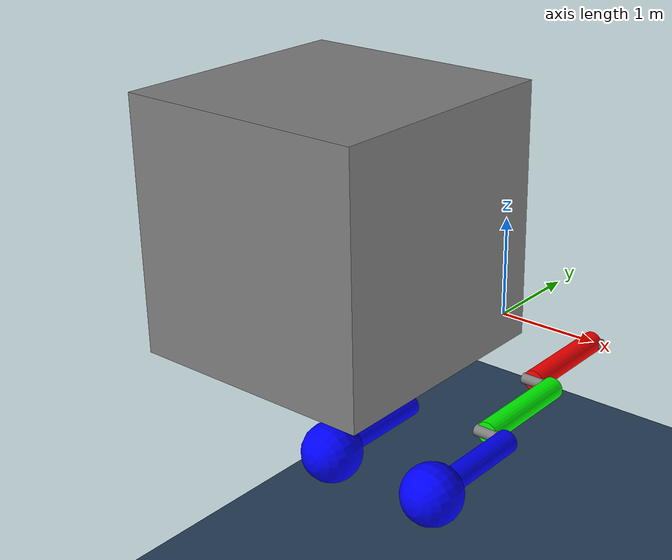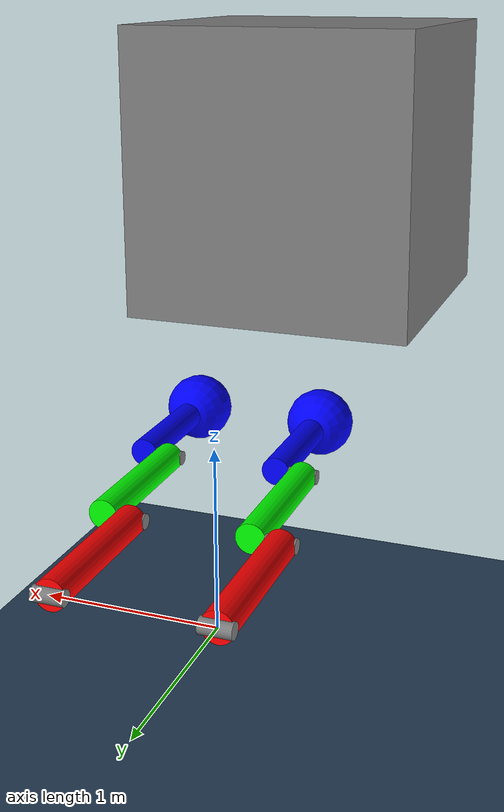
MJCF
<mujoco>
    <option gravity="0 0 -9.81" timestep="0.01" />

    <asset>
        <material name="blue" rgba="0 0 1 1" />
        <material name="green" rgba="0 1 0 1" />
        <material name="red" rgba="1 0 0 1" />
        <material name="white" rgba="1 1 1 1" />
        <texture type="skybox" builtin="gradient" rgb1="0.3 0.5 0.7" rgb2="0 0 0" width="512" height="3072" />
        <texture type="2d" name="groundplane" builtin="checker" rgb1="0.2 0.3 0.4" rgb2="0.1 0.2 0.3" markrgb="0.8 0.8 0.8" width="300" height="300" />
        <material name="groundplane" texture="groundplane" texuniform="true" texrepeat="5 5" reflectance="0.2" />
    </asset>

    <worldbody>
        <geom name="floor" pos="0 0 -2.5" size="0 0 0.05" type="plane" material="groundplane" />
        <light diffuse=".5 .5 .5" pos="0 0 3" dir="0 0 -1" />

        <body name="link_1" pos="0 0 0" euler="90 0 0">
            <site name="site_1" type="cylinder" size=".05 .1" pos=" 0 0 0" euler="0 90 0" />
            <joint name="hinge_1" type="hinge" axis="1 0 0" />
            <geom name="g_link_1" type="cylinder" size=".1 .5" pos="0 0 .5" euler="0 0 0" material="red" mass="1" />
            <site name="site_2" type="cylinder" size=".05 .1" pos=" 0 0 1" euler="0 90 0" />
            <body name="link_2" pos=".2 0 1" euler="0 0 0">
                <joint name="hinge_2" type="hinge" axis="1 0 0" />
                <geom name="g_link_2" type="cylinder" size=".1 .5" pos="0 0 .5" euler="0 0 0" material="green" mass="1" />
                <site name="site_3" type="cylinder" size=".05 .1" pos="0 0 1" euler="0 90 0" />
                <body name="link_3" pos=".2 0 1" euler="0 0 0">
                    <joint name="hinge_3" type="hinge" axis="1 0 0" />
                    <geom name="g_link_3" type="cylinder" size=".1 .5" pos="0 0 .5" euler="0 0 0" material="blue" mass="1" />
                    <geom name="end_mass" type="sphere" size=".25" pos="0 0 1" euler="0 0 0" material="blue" mass="1" />
                </body>
            </body>
        </body>

        <body name="link_1_1" pos="1 0 0" euler="90 0 0">
            <site name="site_1_1" type="cylinder" size=".05 .1" pos=" 0 0 0" euler="0 90 0" />
            <joint name="free_1_1" type="free" />
            <geom name="g_link_1_1" type="cylinder" size=".1 .5" pos="0 0 .5" euler="0 0 0" material="red" mass="1" />
            <site name="site_2_1" type="cylinder" size=".05 .1" pos=" 0 0 1" euler="0 90 0" />
            <body name="link_2_1" pos=".2 0 1" euler="0 0 0">
                <joint name="hinge_2_1" type="hinge" axis="1 0 0" damping="100" />
                <geom name="g_link_2_1" type="cylinder" size=".1 .5" pos="0 0 .5" euler="0 0 0" material="green" mass="1" />
                <site name="site_3_1" type="cylinder" size=".05 .1" pos="0 0 1" euler="0 90 0" />
                <body name="link_3_1" pos=".2 0 1" euler="0 0 0">
                    <joint name="hinge_3_1" type="hinge" axis="1 0 0" damping="100" />
                    <geom name="g_link_3_1" type="cylinder" size=".1 .5" pos="0 0 .5" euler="0 0 0" material="blue" mass="1" />
                    <geom name="end_mass_1" type="sphere" size=".25" pos="0 0 1" euler="0 0 0" material="blue" mass="1" />
                </body>
            </body>
        </body>

        <body name="my_floating_body" pos=".5 -3 2">
            <joint name="box_free_j" type="free" />
            <geom type="box" size="1 1 1" mass="50" />
        </body>

    </worldbody>
    <actuator>
        <position name="pos_servo_1" joint="hinge_1" kp="1" />
        <position name="pos_servo_2" joint="hinge_2" kp="1" />
        <position name="pos_servo_3" joint="hinge_3" kp="1" />

        <position name="pos_servo_2_1" joint="hinge_2_1" kp="1" />
        <position name="pos_servo_3_1" joint="hinge_3_1" kp="1" />
    </actuator>
    <sensor>
        <jointpos name="pos_sensor_1" joint="hinge_1" />
        <jointpos name="pos_sensor_2" joint="hinge_2" />
        <jointpos name="pos_sensor_3" joint="hinge_3" />

        <jointpos name="pos_sensor_2_1" joint="hinge_2_1" />
        <jointpos name="pos_sensor_3_1" joint="hinge_3_1" />
    </sensor>
</mujoco>
